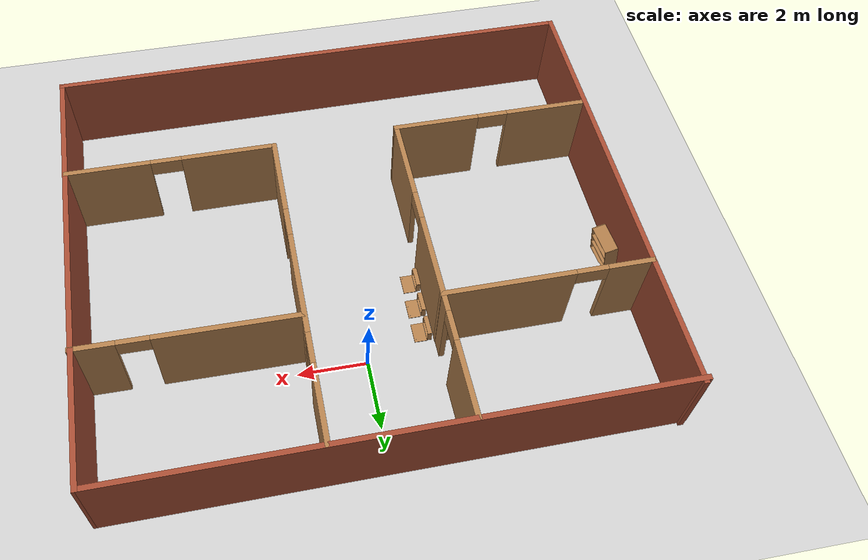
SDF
<sdf version="1.7">
 <world name="default">
  <light name="sun" type="directional">
   <pose>0 0 10 0 -0 0</pose>
   <diffuse>0.8 0.8 0.8 1</diffuse>
   <specular>0.2 0.2 0.2 1</specular>
   <attenuation>
    <range>1000</range>
    <constant>0.9</constant>
    <linear>0.01</linear>
    <quadratic>0.001</quadratic>
   </attenuation>
   <direction>-0.5 0.1 -0.9</direction>
   <spot><inner_angle>0</inner_angle><outer_angle>0</outer_angle><falloff>0</falloff></spot>
  </light>
  <model name="ground_plane">
   <static>1</static>
   <link name="link">
    <collision name="collision">
     <geometry><plane><normal>0 0 1</normal><size>100 100</size></plane></geometry>
     <surface>
      <contact><collide_bitmask>65535</collide_bitmask></contact>
      <friction><ode><mu>100</mu><mu2>50</mu2></ode></friction>
     </surface>
    </collision>
    <visual name="visual">
     <cast_shadows>0</cast_shadows>
     <geometry><plane><normal>0 0 1</normal><size>100 100</size></plane></geometry>
     <material>
      <script><uri>file://media/materials/scripts/gazebo.material</uri><name>Gazebo/Grey</name></script>
     </material>
    </visual>
   </link>
  </model>
  <gravity>0 0 -9.8</gravity>
  <magnetic_field>6e-06 2.3e-05 -4.2e-05</magnetic_field>
  <atmosphere type="adiabatic"/>
  <physics type="ode">
   <max_step_size>0.001</max_step_size>
   <real_time_factor>1</real_time_factor>
   <real_time_update_rate>1000</real_time_update_rate>
  </physics>
  <scene><ambient>0.4 0.4 0.4 1</ambient><background>0.7 0.7 0.7 1</background><shadows>1</shadows></scene>
  <audio><device>default</device></audio>
  <spherical_coordinates>
   <surface_model>EARTH_WGS84</surface_model>
   <latitude_deg>0</latitude_deg>
   <longitude_deg>0</longitude_deg>
   <elevation>0</elevation>
   <heading_deg>0</heading_deg>
  </spherical_coordinates>
  <model name="my_floor">
   <pose>-0.139801 -3.34112 0 0 -0 0</pose>
   <link name="Wall_0">
    <collision name="Wall_0_Collision">
     <geometry><box><size>13.3969 0.15 2.5</size></box></geometry>
     <pose>0 0 1.25 0 -0 0</pose>
    </collision>
    <visual name="Wall_0_Visual">
     <pose>0 0 1.25 0 -0 0</pose>
     <geometry><box><size>13.3969 0.15 2.5</size></box></geometry>
     <material>
      <script><uri>file://media/materials/scripts/gazebo.material</uri><name>Gazebo/Bricks</name></script>
      <ambient>1 1 1 1</ambient>
     </material>
     <meta><layer>0</layer></meta>
    </visual>
    <pose>-7.83388 -0.013549 0 0 -0 -1.5708</pose>
   </link>
   <link name="Wall_10">
    <pose>-4.87438 -3.05973 0 0 -0 0.002577</pose>
    <visual name="Wall_10_Visual_0">
     <pose>-1.74777 0 1.25 0 -0 0</pose>
     <geometry><box><size>2.55547 0.15 2.5</size></box></geometry>
     <material>
      <script><uri>file://media/materials/scripts/gazebo.material</uri><name>Gazebo/Wood</name></script>
      <ambient>1 1 1 1</ambient>
     </material>
     <meta><layer>0</layer></meta>
    </visual>
    <collision name="Wall_10_Collision_0">
     <geometry><box><size>2.55547 0.15 2.5</size></box></geometry>
     <pose>-1.74777 0 1.25 0 -0 0</pose>
    </collision>
    <visual name="Wall_10_Visual_1">
     <pose>1.72773 0 1.25 0 -0 0</pose>
     <geometry><box><size>2.59555 0.15 2.5</size></box></geometry>
     <material>
      <script><uri>file://media/materials/scripts/gazebo.material</uri><name>Gazebo/Wood</name></script>
      <ambient>1 1 1 1</ambient>
     </material>
     <meta><layer>0</layer></meta>
    </visual>
    <collision name="Wall_10_Collision_1">
     <geometry><box><size>2.59555 0.15 2.5</size></box></geometry>
     <pose>1.72773 0 1.25 0 -0 0</pose>
    </collision>
    <visual name="Wall_10_Visual_2">
     <pose>-0.020041 0 2.25 0 -0 0</pose>
     <geometry><box><size>0.9 0.15 0.5</size></box></geometry>
     <material>
      <script><uri>file://media/materials/scripts/gazebo.material</uri><name>Gazebo/Wood</name></script>
      <ambient>1 1 1 1</ambient>
     </material>
     <meta><layer>0</layer></meta>
    </visual>
    <collision name="Wall_10_Collision_2">
     <geometry><box><size>0.9 0.15 0.5</size></box></geometry>
     <pose>-0.020041 0 2.25 0 -0 0</pose>
    </collision>
   </link>
   <link name="Wall_12">
    <pose>-1.9459 1.7558 0 0 -0 1.57537</pose>
    <visual name="Wall_12_Visual_0">
     <pose>-3.58779 0 1.25 0 -0 0</pose>
     <geometry><box><size>2.59036 0.15 2.5</size></box></geometry>
     <material>
      <script><uri>file://media/materials/scripts/gazebo.material</uri><name>Gazebo/Wood</name></script>
      <ambient>1 1 1 1</ambient>
     </material>
     <meta><layer>0</layer></meta>
    </visual>
    <collision name="Wall_12_Collision_0">
     <geometry><box><size>2.59036 0.15 2.5</size></box></geometry>
     <pose>-3.58779 0 1.25 0 -0 0</pose>
    </collision>
    <visual name="Wall_12_Visual_1">
     <pose>0.157015 0 1.25 0 -0 0</pose>
     <geometry><box><size>3.09926 0.15 2.5</size></box></geometry>
     <material>
      <script><uri>file://media/materials/scripts/gazebo.material</uri><name>Gazebo/Wood</name></script>
      <ambient>1 1 1 1</ambient>
     </material>
     <meta><layer>0</layer></meta>
    </visual>
    <collision name="Wall_12_Collision_1">
     <geometry><box><size>3.09926 0.15 2.5</size></box></geometry>
     <pose>0.157015 0 1.25 0 -0 0</pose>
    </collision>
    <visual name="Wall_12_Visual_2">
     <pose>3.74481 0 1.25 0 -0 0</pose>
     <geometry><box><size>2.27633 0.15 2.5</size></box></geometry>
     <material>
      <script><uri>file://media/materials/scripts/gazebo.material</uri><name>Gazebo/Wood</name></script>
      <ambient>1 1 1 1</ambient>
     </material>
     <meta><layer>0</layer></meta>
    </visual>
    <collision name="Wall_12_Collision_2">
     <geometry><box><size>2.27633 0.15 2.5</size></box></geometry>
     <pose>3.74481 0 1.25 0 -0 0</pose>
    </collision>
    <visual name="Wall_12_Visual_3">
     <pose>-1.84261 0 2.25 0 -0 0</pose>
     <geometry><box><size>0.9 0.15 0.5</size></box></geometry>
     <material>
      <script><uri>file://media/materials/scripts/gazebo.material</uri><name>Gazebo/Wood</name></script>
      <ambient>1 1 1 1</ambient>
     </material>
     <meta><layer>0</layer></meta>
    </visual>
    <collision name="Wall_12_Collision_3">
     <geometry><box><size>0.9 0.15 0.5</size></box></geometry>
     <pose>-1.84261 0 2.25 0 -0 0</pose>
    </collision>
    <visual name="Wall_12_Visual_4">
     <pose>2.15664 0 2.25 0 -0 0</pose>
     <geometry><box><size>0.9 0.15 0.5</size></box></geometry>
     <material>
      <script><uri>file://media/materials/scripts/gazebo.material</uri><name>Gazebo/Wood</name></script>
      <ambient>1 1 1 1</ambient>
     </material>
     <meta><layer>0</layer></meta>
    </visual>
    <collision name="Wall_12_Collision_4">
     <geometry><box><size>0.9 0.15 0.5</size></box></geometry>
     <pose>2.15664 0 2.25 0 -0 0</pose>
    </collision>
   </link>
   <link name="Wall_14">
    <pose>-4.88063 2.9062 0 0 -0 0.004525</pose>
    <visual name="Wall_14_Visual_0">
     <pose>-2.34508 0 1.25 0 -0 0</pose>
     <geometry><box><size>1.33854 0.15 2.5</size></box></geometry>
     <material>
      <script><uri>file://media/materials/scripts/gazebo.material</uri><name>Gazebo/Wood</name></script>
      <ambient>1 1 1 1</ambient>
     </material>
     <meta><layer>0</layer></meta>
    </visual>
    <collision name="Wall_14_Collision_0">
     <geometry><box><size>1.33854 0.15 2.5</size></box></geometry>
     <pose>-2.34508 0 1.25 0 -0 0</pose>
    </collision>
    <visual name="Wall_14_Visual_1">
     <pose>1.11927 0 1.25 0 -0 0</pose>
     <geometry><box><size>3.79016 0.15 2.5</size></box></geometry>
     <material>
      <script><uri>file://media/materials/scripts/gazebo.material</uri><name>Gazebo/Wood</name></script>
      <ambient>1 1 1 1</ambient>
     </material>
     <meta><layer>0</layer></meta>
    </visual>
    <collision name="Wall_14_Collision_1">
     <geometry><box><size>3.79016 0.15 2.5</size></box></geometry>
     <pose>1.11927 0 1.25 0 -0 0</pose>
    </collision>
    <visual name="Wall_14_Visual_2">
     <pose>-1.22581 0 2.25 0 -0 0</pose>
     <geometry><box><size>0.9 0.15 0.5</size></box></geometry>
     <material>
      <script><uri>file://media/materials/scripts/gazebo.material</uri><name>Gazebo/Wood</name></script>
      <ambient>1 1 1 1</ambient>
     </material>
     <meta><layer>0</layer></meta>
    </visual>
    <collision name="Wall_14_Collision_2">
     <geometry><box><size>0.9 0.15 0.5</size></box></geometry>
     <pose>-1.22581 0 2.25 0 -0 0</pose>
    </collision>
   </link>
   <link name="Wall_16">
    <pose>1.78272 1.79033 0 0 -0 -1.5708</pose>
    <visual name="Wall_16_Visual_0">
     <pose>-3.71499 0 1.25 0 -0 0</pose>
     <geometry><box><size>2.32002 0.15 2.5</size></box></geometry>
     <material>
      <script><uri>file://media/materials/scripts/gazebo.material</uri><name>Gazebo/Wood</name></script>
      <ambient>1 1 1 1</ambient>
     </material>
     <meta><layer>0</layer></meta>
    </visual>
    <collision name="Wall_16_Collision_0">
     <geometry><box><size>2.32002 0.15 2.5</size></box></geometry>
     <pose>-3.71499 0 1.25 0 -0 0</pose>
    </collision>
    <visual name="Wall_16_Visual_1">
     <pose>-0.076134 0 1.25 0 -0 0</pose>
     <geometry><box><size>3.15769 0.15 2.5</size></box></geometry>
     <material>
      <script><uri>file://media/materials/scripts/gazebo.material</uri><name>Gazebo/Wood</name></script>
      <ambient>1 1 1 1</ambient>
     </material>
     <meta><layer>0</layer></meta>
    </visual>
    <collision name="Wall_16_Collision_1">
     <geometry><box><size>3.15769 0.15 2.5</size></box></geometry>
     <pose>-0.076134 0 1.25 0 -0 0</pose>
    </collision>
    <visual name="Wall_16_Visual_2">
     <pose>3.63886 0 1.25 0 -0 0</pose>
     <geometry><box><size>2.47229 0.15 2.5</size></box></geometry>
     <material>
      <script><uri>file://media/materials/scripts/gazebo.material</uri><name>Gazebo/Wood</name></script>
      <ambient>1 1 1 1</ambient>
     </material>
     <meta><layer>0</layer></meta>
    </visual>
    <collision name="Wall_16_Collision_2">
     <geometry><box><size>2.47229 0.15 2.5</size></box></geometry>
     <pose>3.63886 0 1.25 0 -0 0</pose>
    </collision>
    <visual name="Wall_16_Visual_3">
     <pose>-2.10498 0 2.25 0 -0 0</pose>
     <geometry><box><size>0.9 0.15 0.5</size></box></geometry>
     <material>
      <script><uri>file://media/materials/scripts/gazebo.material</uri><name>Gazebo/Wood</name></script>
      <ambient>1 1 1 1</ambient>
     </material>
     <meta><layer>0</layer></meta>
    </visual>
    <collision name="Wall_16_Collision_3">
     <geometry><box><size>0.9 0.15 0.5</size></box></geometry>
     <pose>-2.10498 0 2.25 0 -0 0</pose>
    </collision>
    <visual name="Wall_16_Visual_4">
     <pose>1.95271 0 2.25 0 -0 0</pose>
     <geometry><box><size>0.9 0.15 0.5</size></box></geometry>
     <material>
      <script><uri>file://media/materials/scripts/gazebo.material</uri><name>Gazebo/Wood</name></script>
      <ambient>1 1 1 1</ambient>
     </material>
     <meta><layer>0</layer></meta>
    </visual>
    <collision name="Wall_16_Collision_4">
     <geometry><box><size>0.9 0.15 0.5</size></box></geometry>
     <pose>1.95271 0 2.25 0 -0 0</pose>
    </collision>
   </link>
   <link name="Wall_17">
    <pose>4.83272 -3.00967 0 0 -0 0</pose>
    <visual name="Wall_17_Visual_0">
     <pose>-1.71276 0 1.25 0 -0 0</pose>
     <geometry><box><size>2.82448 0.15 2.5</size></box></geometry>
     <material>
      <script><uri>file://media/materials/scripts/gazebo.material</uri><name>Gazebo/Wood</name></script>
      <ambient>1 1 1 1</ambient>
     </material>
     <meta><layer>0</layer></meta>
    </visual>
    <collision name="Wall_17_Collision_0">
     <geometry><box><size>2.82448 0.15 2.5</size></box></geometry>
     <pose>-1.71276 0 1.25 0 -0 0</pose>
    </collision>
    <visual name="Wall_17_Visual_1">
     <pose>1.86224 0 1.25 0 -0 0</pose>
     <geometry><box><size>2.52552 0.15 2.5</size></box></geometry>
     <material>
      <script><uri>file://media/materials/scripts/gazebo.material</uri><name>Gazebo/Wood</name></script>
      <ambient>1 1 1 1</ambient>
     </material>
     <meta><layer>0</layer></meta>
    </visual>
    <collision name="Wall_17_Collision_1">
     <geometry><box><size>2.52552 0.15 2.5</size></box></geometry>
     <pose>1.86224 0 1.25 0 -0 0</pose>
    </collision>
    <visual name="Wall_17_Visual_2">
     <pose>0.149482 0 2.25 0 -0 0</pose>
     <geometry><box><size>0.9 0.15 0.5</size></box></geometry>
     <material>
      <script><uri>file://media/materials/scripts/gazebo.material</uri><name>Gazebo/Wood</name></script>
      <ambient>1 1 1 1</ambient>
     </material>
     <meta><layer>0</layer></meta>
    </visual>
    <collision name="Wall_17_Collision_2">
     <geometry><box><size>0.9 0.15 0.5</size></box></geometry>
     <pose>0.149482 0 2.25 0 -0 0</pose>
    </collision>
   </link>
   <link name="Wall_21">
    <pose>4.82844 2.8796 0 0 -0 -0.004367</pose>
    <visual name="Wall_21_Visual_0">
     <pose>-1.07 0 1.25 0 -0 0</pose>
     <geometry><box><size>4.1015 0.15 2.5</size></box></geometry>
     <material>
      <script><uri>file://media/materials/scripts/gazebo.material</uri><name>Gazebo/Wood</name></script>
      <ambient>1 1 1 1</ambient>
     </material>
     <meta><layer>0</layer></meta>
    </visual>
    <collision name="Wall_21_Collision_0">
     <geometry><box><size>4.1015 0.15 2.5</size></box></geometry>
     <pose>-1.07 0 1.25 0 -0 0</pose>
    </collision>
    <visual name="Wall_21_Visual_1">
     <pose>2.50075 0 1.25 0 -0 0</pose>
     <geometry><box><size>1.24001 0.15 2.5</size></box></geometry>
     <material>
      <script><uri>file://media/materials/scripts/gazebo.material</uri><name>Gazebo/Wood</name></script>
      <ambient>1 1 1 1</ambient>
     </material>
     <meta><layer>0</layer></meta>
    </visual>
    <collision name="Wall_21_Collision_1">
     <geometry><box><size>1.24001 0.15 2.5</size></box></geometry>
     <pose>2.50075 0 1.25 0 -0 0</pose>
    </collision>
    <visual name="Wall_21_Visual_2">
     <pose>1.43074 0 2.25 0 -0 0</pose>
     <geometry><box><size>0.9 0.15 0.5</size></box></geometry>
     <material>
      <script><uri>file://media/materials/scripts/gazebo.material</uri><name>Gazebo/Wood</name></script>
      <ambient>1 1 1 1</ambient>
     </material>
     <meta><layer>0</layer></meta>
    </visual>
    <collision name="Wall_21_Collision_2">
     <geometry><box><size>0.9 0.15 0.5</size></box></geometry>
     <pose>1.43074 0 2.25 0 -0 0</pose>
    </collision>
   </link>
   <link name="Wall_3">
    <collision name="Wall_3_Collision">
     <geometry><box><size>15.924 0.15 2.5</size></box></geometry>
     <pose>0 0 1.25 0 -0 0</pose>
    </collision>
    <visual name="Wall_3_Visual">
     <pose>0 0 1.25 0 -0 0</pose>
     <geometry><box><size>15.924 0.15 2.5</size></box></geometry>
     <material>
      <script><uri>file://media/materials/scripts/gazebo.material</uri><name>Gazebo/Bricks</name></script>
      <ambient>1 1 1 1</ambient>
     </material>
     <meta><layer>0</layer></meta>
    </visual>
    <pose>0.05308 -6.6104 0 0 -0 0.003373</pose>
   </link>
   <link name="Wall_4">
    <collision name="Wall_4_Collision">
     <geometry><box><size>13.371 0.15 2.5</size></box></geometry>
     <pose>0 0 1.25 0 -0 0</pose>
    </collision>
    <visual name="Wall_4_Visual">
     <pose>0 0 1.25 0 -0 0</pose>
     <geometry><box><size>13.371 0.15 2.5</size></box></geometry>
     <material>
      <script><uri>file://media/materials/scripts/gazebo.material</uri><name>Gazebo/Bricks</name></script>
      <ambient>1 1 1 1</ambient>
     </material>
     <meta><layer>0</layer></meta>
    </visual>
    <pose>7.87354 0.026351 0 0 -0 1.58086</pose>
   </link>
   <link name="Wall_5">
    <collision name="Wall_5_Collision">
     <geometry><box><size>15.8977 0.15 2.5</size></box></geometry>
     <pose>0 0 1.25 0 -0 0</pose>
    </collision>
    <visual name="Wall_5_Visual">
     <pose>0 0 1.25 0 -0 0</pose>
     <geometry><box><size>15.8977 0.15 2.5</size></box></geometry>
     <material>
      <script><uri>file://media/materials/scripts/gazebo.material</uri><name>Gazebo/Bricks</name></script>
      <ambient>1 1 1 1</ambient>
     </material>
     <meta><layer>0</layer></meta>
    </visual>
    <pose>-0.066621 6.5833 0 0 -0 -3.13484</pose>
   </link>
   <static>1</static>
  </model>
  <model name="bookshelf">
   <static>1</static>
   <link name="link">
    <inertial><mass>1</mass></inertial>
    <collision name="back">
     <pose>0 0.005 0.6 0 -0 0</pose>
     <geometry><box><size>0.9 0.01 1.2</size></box></geometry>
    </collision>
    <visual name="visual1">
     <pose>0 0.005 0.6 0 -0 0</pose>
     <geometry><box><size>0.9 0.01 1.2</size></box></geometry>
     <material>
      <script><uri>file://media/materials/scripts/gazebo.material</uri><name>Gazebo/Wood</name></script>
     </material>
    </visual>
    <collision name="left_side">
     <pose>0.45 -0.195 0.6 0 -0 0</pose>
     <geometry><box><size>0.02 0.4 1.2</size></box></geometry>
    </collision>
    <visual name="visual2">
     <pose>0.45 -0.195 0.6 0 -0 0</pose>
     <geometry><box><size>0.02 0.4 1.2</size></box></geometry>
     <material>
      <script><uri>file://media/materials/scripts/gazebo.material</uri><name>Gazebo/Wood</name></script>
     </material>
    </visual>
    <collision name="right_side">
     <pose>-0.45 -0.195 0.6 0 -0 0</pose>
     <geometry><box><size>0.02 0.4 1.2</size></box></geometry>
    </collision>
    <visual name="visual3">
     <pose>-0.45 -0.195 0.6 0 -0 0</pose>
     <geometry><box><size>0.02 0.4 1.2</size></box></geometry>
     <material>
      <script><uri>file://media/materials/scripts/gazebo.material</uri><name>Gazebo/Wood</name></script>
     </material>
    </visual>
    <collision name="bottom">
     <pose>0 -0.195 0.03 0 -0 0</pose>
     <geometry><box><size>0.88 0.4 0.06</size></box></geometry>
    </collision>
    <visual name="visual4">
     <pose>0 -0.195 0.03 0 -0 0</pose>
     <geometry><box><size>0.88 0.4 0.06</size></box></geometry>
     <material>
      <script><uri>file://media/materials/scripts/gazebo.material</uri><name>Gazebo/Wood</name></script>
     </material>
    </visual>
    <collision name="top">
     <pose>0 -0.195 1.19 0 -0 0</pose>
     <geometry><box><size>0.88 0.4 0.02</size></box></geometry>
    </collision>
    <visual name="visual5">
     <pose>0 -0.195 1.19 0 -0 0</pose>
     <geometry><box><size>0.88 0.4 0.02</size></box></geometry>
     <material>
      <script><uri>file://media/materials/scripts/gazebo.material</uri><name>Gazebo/Wood</name></script>
     </material>
    </visual>
    <collision name="low_shelf">
     <pose>0 -0.195 0.43 0 -0 0</pose>
     <geometry><box><size>0.88 0.4 0.02</size></box></geometry>
    </collision>
    <visual name="visual6">
     <pose>0 -0.195 0.43 0 -0 0</pose>
     <geometry><box><size>0.88 0.4 0.02</size></box></geometry>
     <material>
      <script><uri>file://media/materials/scripts/gazebo.material</uri><name>Gazebo/Wood</name></script>
     </material>
    </visual>
    <collision name="high_shelf">
     <pose>0 -0.195 0.8 0 -0 0</pose>
     <geometry><box><size>0.88 0.4 0.02</size></box></geometry>
    </collision>
    <visual name="visual7">
     <pose>0 -0.195 0.8 0 -0 0</pose>
     <geometry><box><size>0.88 0.4 0.02</size></box></geometry>
     <material>
      <script><uri>file://media/materials/scripts/gazebo.material</uri><name>Gazebo/Wood</name></script>
     </material>
    </visual>
   </link>
   <pose>-4.65689 -0.609841 0 0 -0 0</pose>
  </model>
  <model name="bookshelf_0">
   <static>1</static>
   <link name="link">
    <inertial><mass>1</mass></inertial>
    <collision name="back">
     <pose>0 0.005 0.6 0 -0 0</pose>
     <geometry><box><size>0.9 0.01 1.2</size></box></geometry>
    </collision>
    <visual name="visual1">
     <pose>0 0.005 0.6 0 -0 0</pose>
     <geometry><box><size>0.9 0.01 1.2</size></box></geometry>
     <material>
      <script><uri>file://media/materials/scripts/gazebo.material</uri><name>Gazebo/Wood</name></script>
     </material>
    </visual>
    <collision name="left_side">
     <pose>0.45 -0.195 0.6 0 -0 0</pose>
     <geometry><box><size>0.02 0.4 1.2</size></box></geometry>
    </collision>
    <visual name="visual2">
     <pose>0.45 -0.195 0.6 0 -0 0</pose>
     <geometry><box><size>0.02 0.4 1.2</size></box></geometry>
     <material>
      <script><uri>file://media/materials/scripts/gazebo.material</uri><name>Gazebo/Wood</name></script>
     </material>
    </visual>
    <collision name="right_side">
     <pose>-0.45 -0.195 0.6 0 -0 0</pose>
     <geometry><box><size>0.02 0.4 1.2</size></box></geometry>
    </collision>
    <visual name="visual3">
     <pose>-0.45 -0.195 0.6 0 -0 0</pose>
     <geometry><box><size>0.02 0.4 1.2</size></box></geometry>
     <material>
      <script><uri>file://media/materials/scripts/gazebo.material</uri><name>Gazebo/Wood</name></script>
     </material>
    </visual>
    <collision name="bottom">
     <pose>0 -0.195 0.03 0 -0 0</pose>
     <geometry><box><size>0.88 0.4 0.06</size></box></geometry>
    </collision>
    <visual name="visual4">
     <pose>0 -0.195 0.03 0 -0 0</pose>
     <geometry><box><size>0.88 0.4 0.06</size></box></geometry>
     <material>
      <script><uri>file://media/materials/scripts/gazebo.material</uri><name>Gazebo/Wood</name></script>
     </material>
    </visual>
    <collision name="top">
     <pose>0 -0.195 1.19 0 -0 0</pose>
     <geometry><box><size>0.88 0.4 0.02</size></box></geometry>
    </collision>
    <visual name="visual5">
     <pose>0 -0.195 1.19 0 -0 0</pose>
     <geometry><box><size>0.88 0.4 0.02</size></box></geometry>
     <material>
      <script><uri>file://media/materials/scripts/gazebo.material</uri><name>Gazebo/Wood</name></script>
     </material>
    </visual>
    <collision name="low_shelf">
     <pose>0 -0.195 0.43 0 -0 0</pose>
     <geometry><box><size>0.88 0.4 0.02</size></box></geometry>
    </collision>
    <visual name="visual6">
     <pose>0 -0.195 0.43 0 -0 0</pose>
     <geometry><box><size>0.88 0.4 0.02</size></box></geometry>
     <material>
      <script><uri>file://media/materials/scripts/gazebo.material</uri><name>Gazebo/Wood</name></script>
     </material>
    </visual>
    <collision name="high_shelf">
     <pose>0 -0.195 0.8 0 -0 0</pose>
     <geometry><box><size>0.88 0.4 0.02</size></box></geometry>
    </collision>
    <visual name="visual7">
     <pose>0 -0.195 0.8 0 -0 0</pose>
     <geometry><box><size>0.88 0.4 0.02</size></box></geometry>
     <material>
      <script><uri>file://media/materials/scripts/gazebo.material</uri><name>Gazebo/Wood</name></script>
     </material>
    </visual>
   </link>
   <pose>-7.90544 -2.32805 0 0.187646 0.049674 1.68523</pose>
  </model>
  <model name="bookshelf_1">
   <static>1</static>
   <link name="link">
    <inertial><mass>1</mass></inertial>
    <collision name="back">
     <pose>0 0.005 0.6 0 -0 0</pose>
     <geometry><box><size>0.9 0.01 1.2</size></box></geometry>
    </collision>
    <visual name="visual1">
     <pose>0 0.005 0.6 0 -0 0</pose>
     <geometry><box><size>0.9 0.01 1.2</size></box></geometry>
     <material>
      <script><uri>file://media/materials/scripts/gazebo.material</uri><name>Gazebo/Wood</name></script>
     </material>
    </visual>
    <collision name="left_side">
     <pose>0.45 -0.195 0.6 0 -0 0</pose>
     <geometry><box><size>0.02 0.4 1.2</size></box></geometry>
    </collision>
    <visual name="visual2">
     <pose>0.45 -0.195 0.6 0 -0 0</pose>
     <geometry><box><size>0.02 0.4 1.2</size></box></geometry>
     <material>
      <script><uri>file://media/materials/scripts/gazebo.material</uri><name>Gazebo/Wood</name></script>
     </material>
    </visual>
    <collision name="right_side">
     <pose>-0.45 -0.195 0.6 0 -0 0</pose>
     <geometry><box><size>0.02 0.4 1.2</size></box></geometry>
    </collision>
    <visual name="visual3">
     <pose>-0.45 -0.195 0.6 0 -0 0</pose>
     <geometry><box><size>0.02 0.4 1.2</size></box></geometry>
     <material>
      <script><uri>file://media/materials/scripts/gazebo.material</uri><name>Gazebo/Wood</name></script>
     </material>
    </visual>
    <collision name="bottom">
     <pose>0 -0.195 0.03 0 -0 0</pose>
     <geometry><box><size>0.88 0.4 0.06</size></box></geometry>
    </collision>
    <visual name="visual4">
     <pose>0 -0.195 0.03 0 -0 0</pose>
     <geometry><box><size>0.88 0.4 0.06</size></box></geometry>
     <material>
      <script><uri>file://media/materials/scripts/gazebo.material</uri><name>Gazebo/Wood</name></script>
     </material>
    </visual>
    <collision name="top">
     <pose>0 -0.195 1.19 0 -0 0</pose>
     <geometry><box><size>0.88 0.4 0.02</size></box></geometry>
    </collision>
    <visual name="visual5">
     <pose>0 -0.195 1.19 0 -0 0</pose>
     <geometry><box><size>0.88 0.4 0.02</size></box></geometry>
     <material>
      <script><uri>file://media/materials/scripts/gazebo.material</uri><name>Gazebo/Wood</name></script>
     </material>
    </visual>
    <collision name="low_shelf">
     <pose>0 -0.195 0.43 0 -0 0</pose>
     <geometry><box><size>0.88 0.4 0.02</size></box></geometry>
    </collision>
    <visual name="visual6">
     <pose>0 -0.195 0.43 0 -0 0</pose>
     <geometry><box><size>0.88 0.4 0.02</size></box></geometry>
     <material>
      <script><uri>file://media/materials/scripts/gazebo.material</uri><name>Gazebo/Wood</name></script>
     </material>
    </visual>
    <collision name="high_shelf">
     <pose>0 -0.195 0.8 0 -0 0</pose>
     <geometry><box><size>0.88 0.4 0.02</size></box></geometry>
    </collision>
    <visual name="visual7">
     <pose>0 -0.195 0.8 0 -0 0</pose>
     <geometry><box><size>0.88 0.4 0.02</size></box></geometry>
     <material>
      <script><uri>file://media/materials/scripts/gazebo.material</uri><name>Gazebo/Wood</name></script>
     </material>
    </visual>
   </link>
   <pose>4.83266 -0.700052 -0.065453 0 -0 0</pose>
  </model>
  <model name="wooden_case">
   <link name="base">
    <pose>0 0 0.024 0 -0 0</pose>
    <inertial>
     <pose>-0.022184 0 0.171592 0 -0 0</pose>
     <mass>3.96264</mass>
     <inertia>
      <ixx>0.213536</ixx>
      <ixy>0</ixy>
      <ixz>0.000779377</ixz>
      <iyy>0.0708943</iyy>
      <iyz>0</iyz>
      <izz>0.154604</izz>
     </inertia>
    </inertial>
    <collision name="collision_back">
     <pose>-0.053975 0 0.1778 0 -0 0</pose>
     <geometry><box><size>0.01905 0.5461 0.3175</size></box></geometry>
     <surface>
      <contact>
       <poissons_ratio>0.347</poissons_ratio>
       <elastic_modulus>8.8e+09</elastic_modulus>
       <ode><kp>100000</kp><kd>100</kd><max_vel>100</max_vel><min_depth>0.001</min_depth></ode>
      </contact>
      <friction>
       <torsional>
        <coefficient>1</coefficient>
        <use_patch_radius>0</use_patch_radius>
        <surface_radius>0.01</surface_radius>
       </torsional>
      </friction>
     </surface>
    </collision>
    <visual name="visual_back">
     <pose>-0.053975 0 0.1778 0 -0 0</pose>
     <geometry><box><size>0.01905 0.5461 0.3175</size></box></geometry>
     <material>
      <script><uri>file://media/materials/scripts/gazebo.material</uri><name>Gazebo/Wood</name></script>
     </material>
    </visual>
    <collision name="collision_bottom">
     <pose>0 0 0.009525 0 -0 0</pose>
     <geometry><box><size>0.127 0.5842 0.01905</size></box></geometry>
     <surface>
      <contact>
       <poissons_ratio>0.347</poissons_ratio>
       <elastic_modulus>8.8e+09</elastic_modulus>
       <ode><kp>100000</kp><kd>100</kd><max_vel>100</max_vel><min_depth>0.001</min_depth></ode>
      </contact>
      <friction>
       <torsional>
        <coefficient>1</coefficient>
        <use_patch_radius>0</use_patch_radius>
        <surface_radius>0.01</surface_radius>
       </torsional>
      </friction>
     </surface>
    </collision>
    <visual name="visual_bottom">
     <pose>0 0 0.009525 0 -0 0</pose>
     <geometry><box><size>0.127 0.5842 0.01905</size></box></geometry>
     <material>
      <script><uri>file://media/materials/scripts/gazebo.material</uri><name>Gazebo/Wood</name></script>
     </material>
    </visual>
    <collision name="collision_top">
     <pose>0 0 0.346075 0 -0 0</pose>
     <geometry><box><size>0.127 0.5842 0.01905</size></box></geometry>
     <surface>
      <contact>
       <poissons_ratio>0.347</poissons_ratio>
       <elastic_modulus>8.8e+09</elastic_modulus>
       <ode><kp>100000</kp><kd>100</kd><max_vel>100</max_vel><min_depth>0.001</min_depth></ode>
      </contact>
      <friction>
       <torsional>
        <coefficient>1</coefficient>
        <use_patch_radius>0</use_patch_radius>
        <surface_radius>0.01</surface_radius>
       </torsional>
      </friction>
     </surface>
    </collision>
    <visual name="visual_top">
     <pose>0 0 0.346075 0 -0 0</pose>
     <geometry><box><size>0.127 0.5842 0.01905</size></box></geometry>
     <material>
      <script><uri>file://media/materials/scripts/gazebo.material</uri><name>Gazebo/Wood</name></script>
     </material>
    </visual>
    <collision name="collision_left">
     <pose>0 -0.282575 0.1778 0 -0 0</pose>
     <geometry><box><size>0.127 0.01905 0.3175</size></box></geometry>
     <surface>
      <contact>
       <poissons_ratio>0.347</poissons_ratio>
       <elastic_modulus>8.8e+09</elastic_modulus>
       <ode><kp>100000</kp><kd>100</kd><max_vel>100</max_vel><min_depth>0.001</min_depth></ode>
      </contact>
      <friction>
       <torsional>
        <coefficient>1</coefficient>
        <use_patch_radius>0</use_patch_radius>
        <surface_radius>0.01</surface_radius>
       </torsional>
      </friction>
     </surface>
    </collision>
    <visual name="visual_left">
     <pose>0 -0.282575 0.1778 0 -0 0</pose>
     <geometry><box><size>0.127 0.01905 0.3175</size></box></geometry>
     <material>
      <script><uri>file://media/materials/scripts/gazebo.material</uri><name>Gazebo/Wood</name></script>
     </material>
    </visual>
    <collision name="collision_right">
     <pose>0 0.282575 0.1778 0 -0 0</pose>
     <geometry><box><size>0.127 0.01905 0.3175</size></box></geometry>
     <surface>
      <contact>
       <poissons_ratio>0.347</poissons_ratio>
       <elastic_modulus>8.8e+09</elastic_modulus>
       <ode><kp>100000</kp><kd>100</kd><max_vel>100</max_vel><min_depth>0.001</min_depth></ode>
      </contact>
      <friction>
       <torsional>
        <coefficient>1</coefficient>
        <use_patch_radius>0</use_patch_radius>
        <surface_radius>0.01</surface_radius>
       </torsional>
      </friction>
     </surface>
    </collision>
    <visual name="visual_right">
     <pose>0 0.282575 0.1778 0 -0 0</pose>
     <geometry><box><size>0.127 0.01905 0.3175</size></box></geometry>
     <material>
      <script><uri>file://media/materials/scripts/gazebo.material</uri><name>Gazebo/Wood</name></script>
     </material>
    </visual>
    <collision name="collision_block_left">
     <pose>0.0095 -0.2151 -0.012 0 -0 0</pose>
     <geometry><box><size>0.108 0.05 0.024</size></box></geometry>
     <surface>
      <contact>
       <poissons_ratio>0.347</poissons_ratio>
       <elastic_modulus>8.8e+09</elastic_modulus>
       <ode><kp>100000</kp><kd>100</kd><max_vel>100</max_vel><min_depth>0.001</min_depth></ode>
      </contact>
      <friction>
       <torsional>
        <coefficient>1</coefficient>
        <use_patch_radius>0</use_patch_radius>
        <surface_radius>0.01</surface_radius>
       </torsional>
      </friction>
     </surface>
    </collision>
    <visual name="visual_block_left">
     <pose>0.0095 -0.2151 -0.012 0 -0 0</pose>
     <geometry><box><size>0.108 0.05 0.024</size></box></geometry>
     <material>
      <script><uri>file://media/materials/scripts/gazebo.material</uri><name>Gazebo/Wood</name></script>
     </material>
    </visual>
    <collision name="collision_block_right">
     <pose>0.0095 0.2151 -0.012 0 -0 0</pose>
     <geometry><box><size>0.108 0.05 0.024</size></box></geometry>
     <surface>
      <contact>
       <poissons_ratio>0.347</poissons_ratio>
       <elastic_modulus>8.8e+09</elastic_modulus>
       <ode><kp>100000</kp><kd>100</kd><max_vel>100</max_vel><min_depth>0.001</min_depth></ode>
      </contact>
      <friction>
       <torsional>
        <coefficient>1</coefficient>
        <use_patch_radius>0</use_patch_radius>
        <surface_radius>0.01</surface_radius>
       </torsional>
      </friction>
     </surface>
    </collision>
    <visual name="visual_block_right">
     <pose>0.0095 0.2151 -0.012 0 -0 0</pose>
     <geometry><box><size>0.108 0.05 0.024</size></box></geometry>
     <material>
      <script><uri>file://media/materials/scripts/gazebo.material</uri><name>Gazebo/Wood</name></script>
     </material>
    </visual>
   </link>
   <link name="lid">
    <pose>0.243775 0 0.009525 0 -0 0</pose>
    <inertial>
     <mass>1.97874</mass>
     <inertia>
      <ixx>0.0563367</ixx>
      <ixy>0</ixy>
      <ixz>0</ixz>
      <iyy>0.020911</iyy>
      <iyz>0</iyz>
      <izz>0.0771281</izz>
     </inertia>
    </inertial>
    <collision name="collision">
     <geometry><box><size>0.3556 0.5842 0.01905</size></box></geometry>
     <surface>
      <contact>
       <poissons_ratio>0.347</poissons_ratio>
       <elastic_modulus>8.8e+09</elastic_modulus>
       <ode><kp>100000</kp><kd>100</kd><max_vel>100</max_vel><min_depth>0.001</min_depth></ode>
      </contact>
      <friction>
       <torsional>
        <coefficient>1</coefficient>
        <use_patch_radius>0</use_patch_radius>
        <surface_radius>0.01</surface_radius>
       </torsional>
      </friction>
     </surface>
    </collision>
    <visual name="visual">
     <geometry><box><size>0.3556 0.5842 0.01905</size></box></geometry>
     <material>
      <script><uri>file://media/materials/scripts/gazebo.material</uri><name>Gazebo/Wood</name></script>
     </material>
    </visual>
    <visual name="tee_nut_1">
     <pose>0.122 -0.216 0 0 -0 0</pose>
     <geometry><cylinder><radius>0.00635</radius><length>0.0192405</length></cylinder></geometry>
     <material>
      <script><uri>file://media/materials/scripts/gazebo.material</uri><name>Gazebo/Grey</name></script>
     </material>
    </visual>
    <visual name="tee_nut_2">
     <pose>0.122 -0.088 0 0 -0 0</pose>
     <geometry><cylinder><radius>0.00635</radius><length>0.0192405</length></cylinder></geometry>
     <material>
      <script><uri>file://media/materials/scripts/gazebo.material</uri><name>Gazebo/Grey</name></script>
     </material>
    </visual>
    <visual name="tee_nut_3">
     <pose>0.122 0.088 0 0 -0 0</pose>
     <geometry><cylinder><radius>0.00635</radius><length>0.0192405</length></cylinder></geometry>
     <material>
      <script><uri>file://media/materials/scripts/gazebo.material</uri><name>Gazebo/Grey</name></script>
     </material>
    </visual>
    <visual name="tee_nut_4">
     <pose>0.122 0.216 0 0 -0 0</pose>
     <geometry><cylinder><radius>0.00635</radius><length>0.0192405</length></cylinder></geometry>
     <material>
      <script><uri>file://media/materials/scripts/gazebo.material</uri><name>Gazebo/Grey</name></script>
     </material>
    </visual>
   </link>
   <joint name="lid_hinge" type="revolute">
    <pose>-0.1778 0 0.01905 0 -0 0</pose>
    <parent>base</parent>
    <child>lid</child>
    <axis>
     <xyz>0 1 0</xyz>
     <limit><upper>0.523599</upper><lower>-1.5708</lower></limit>
     <dynamics><spring_reference>0</spring_reference><spring_stiffness>0</spring_stiffness></dynamics>
    </axis>
   </joint>
   <pose>-1.87108 -0.728567 -0.001057 0 -0.000429 0</pose>
  </model>
  <model name="wooden_case_0">
   <link name="base">
    <pose>0 0 0.024 0 -0 0</pose>
    <inertial>
     <pose>-0.022184 0 0.171592 0 -0 0</pose>
     <mass>3.96264</mass>
     <inertia>
      <ixx>0.213536</ixx>
      <ixy>0</ixy>
      <ixz>0.000779377</ixz>
      <iyy>0.0708943</iyy>
      <iyz>0</iyz>
      <izz>0.154604</izz>
     </inertia>
    </inertial>
    <collision name="collision_back">
     <pose>-0.053975 0 0.1778 0 -0 0</pose>
     <geometry><box><size>0.01905 0.5461 0.3175</size></box></geometry>
     <surface>
      <contact>
       <poissons_ratio>0.347</poissons_ratio>
       <elastic_modulus>8.8e+09</elastic_modulus>
       <ode><kp>100000</kp><kd>100</kd><max_vel>100</max_vel><min_depth>0.001</min_depth></ode>
      </contact>
      <friction>
       <torsional>
        <coefficient>1</coefficient>
        <use_patch_radius>0</use_patch_radius>
        <surface_radius>0.01</surface_radius>
       </torsional>
      </friction>
     </surface>
    </collision>
    <visual name="visual_back">
     <pose>-0.053975 0 0.1778 0 -0 0</pose>
     <geometry><box><size>0.01905 0.5461 0.3175</size></box></geometry>
     <material>
      <script><uri>file://media/materials/scripts/gazebo.material</uri><name>Gazebo/Wood</name></script>
     </material>
    </visual>
    <collision name="collision_bottom">
     <pose>0 0 0.009525 0 -0 0</pose>
     <geometry><box><size>0.127 0.5842 0.01905</size></box></geometry>
     <surface>
      <contact>
       <poissons_ratio>0.347</poissons_ratio>
       <elastic_modulus>8.8e+09</elastic_modulus>
       <ode><kp>100000</kp><kd>100</kd><max_vel>100</max_vel><min_depth>0.001</min_depth></ode>
      </contact>
      <friction>
       <torsional>
        <coefficient>1</coefficient>
        <use_patch_radius>0</use_patch_radius>
        <surface_radius>0.01</surface_radius>
       </torsional>
      </friction>
     </surface>
    </collision>
    <visual name="visual_bottom">
     <pose>0 0 0.009525 0 -0 0</pose>
     <geometry><box><size>0.127 0.5842 0.01905</size></box></geometry>
     <material>
      <script><uri>file://media/materials/scripts/gazebo.material</uri><name>Gazebo/Wood</name></script>
     </material>
    </visual>
    <collision name="collision_top">
     <pose>0 0 0.346075 0 -0 0</pose>
     <geometry><box><size>0.127 0.5842 0.01905</size></box></geometry>
     <surface>
      <contact>
       <poissons_ratio>0.347</poissons_ratio>
       <elastic_modulus>8.8e+09</elastic_modulus>
       <ode><kp>100000</kp><kd>100</kd><max_vel>100</max_vel><min_depth>0.001</min_depth></ode>
      </contact>
      <friction>
       <torsional>
        <coefficient>1</coefficient>
        <use_patch_radius>0</use_patch_radius>
        <surface_radius>0.01</surface_radius>
       </torsional>
      </friction>
     </surface>
    </collision>
    <visual name="visual_top">
     <pose>0 0 0.346075 0 -0 0</pose>
     <geometry><box><size>0.127 0.5842 0.01905</size></box></geometry>
     <material>
      <script><uri>file://media/materials/scripts/gazebo.material</uri><name>Gazebo/Wood</name></script>
     </material>
    </visual>
    <collision name="collision_left">
     <pose>0 -0.282575 0.1778 0 -0 0</pose>
     <geometry><box><size>0.127 0.01905 0.3175</size></box></geometry>
     <surface>
      <contact>
       <poissons_ratio>0.347</poissons_ratio>
       <elastic_modulus>8.8e+09</elastic_modulus>
       <ode><kp>100000</kp><kd>100</kd><max_vel>100</max_vel><min_depth>0.001</min_depth></ode>
      </contact>
      <friction>
       <torsional>
        <coefficient>1</coefficient>
        <use_patch_radius>0</use_patch_radius>
        <surface_radius>0.01</surface_radius>
       </torsional>
      </friction>
     </surface>
    </collision>
    <visual name="visual_left">
     <pose>0 -0.282575 0.1778 0 -0 0</pose>
     <geometry><box><size>0.127 0.01905 0.3175</size></box></geometry>
     <material>
      <script><uri>file://media/materials/scripts/gazebo.material</uri><name>Gazebo/Wood</name></script>
     </material>
    </visual>
    <collision name="collision_right">
     <pose>0 0.282575 0.1778 0 -0 0</pose>
     <geometry><box><size>0.127 0.01905 0.3175</size></box></geometry>
     <surface>
      <contact>
       <poissons_ratio>0.347</poissons_ratio>
       <elastic_modulus>8.8e+09</elastic_modulus>
       <ode><kp>100000</kp><kd>100</kd><max_vel>100</max_vel><min_depth>0.001</min_depth></ode>
      </contact>
      <friction>
       <torsional>
        <coefficient>1</coefficient>
        <use_patch_radius>0</use_patch_radius>
        <surface_radius>0.01</surface_radius>
       </torsional>
      </friction>
     </surface>
    </collision>
    <visual name="visual_right">
     <pose>0 0.282575 0.1778 0 -0 0</pose>
     <geometry><box><size>0.127 0.01905 0.3175</size></box></geometry>
     <material>
      <script><uri>file://media/materials/scripts/gazebo.material</uri><name>Gazebo/Wood</name></script>
     </material>
    </visual>
    <collision name="collision_block_left">
     <pose>0.0095 -0.2151 -0.012 0 -0 0</pose>
     <geometry><box><size>0.108 0.05 0.024</size></box></geometry>
     <surface>
      <contact>
       <poissons_ratio>0.347</poissons_ratio>
       <elastic_modulus>8.8e+09</elastic_modulus>
       <ode><kp>100000</kp><kd>100</kd><max_vel>100</max_vel><min_depth>0.001</min_depth></ode>
      </contact>
      <friction>
       <torsional>
        <coefficient>1</coefficient>
        <use_patch_radius>0</use_patch_radius>
        <surface_radius>0.01</surface_radius>
       </torsional>
      </friction>
     </surface>
    </collision>
    <visual name="visual_block_left">
     <pose>0.0095 -0.2151 -0.012 0 -0 0</pose>
     <geometry><box><size>0.108 0.05 0.024</size></box></geometry>
     <material>
      <script><uri>file://media/materials/scripts/gazebo.material</uri><name>Gazebo/Wood</name></script>
     </material>
    </visual>
    <collision name="collision_block_right">
     <pose>0.0095 0.2151 -0.012 0 -0 0</pose>
     <geometry><box><size>0.108 0.05 0.024</size></box></geometry>
     <surface>
      <contact>
       <poissons_ratio>0.347</poissons_ratio>
       <elastic_modulus>8.8e+09</elastic_modulus>
       <ode><kp>100000</kp><kd>100</kd><max_vel>100</max_vel><min_depth>0.001</min_depth></ode>
      </contact>
      <friction>
       <torsional>
        <coefficient>1</coefficient>
        <use_patch_radius>0</use_patch_radius>
        <surface_radius>0.01</surface_radius>
       </torsional>
      </friction>
     </surface>
    </collision>
    <visual name="visual_block_right">
     <pose>0.0095 0.2151 -0.012 0 -0 0</pose>
     <geometry><box><size>0.108 0.05 0.024</size></box></geometry>
     <material>
      <script><uri>file://media/materials/scripts/gazebo.material</uri><name>Gazebo/Wood</name></script>
     </material>
    </visual>
   </link>
   <link name="lid">
    <pose>0.243775 0 0.009525 0 -0 0</pose>
    <inertial>
     <mass>1.97874</mass>
     <inertia>
      <ixx>0.0563367</ixx>
      <ixy>0</ixy>
      <ixz>0</ixz>
      <iyy>0.020911</iyy>
      <iyz>0</iyz>
      <izz>0.0771281</izz>
     </inertia>
    </inertial>
    <collision name="collision">
     <geometry><box><size>0.3556 0.5842 0.01905</size></box></geometry>
     <surface>
      <contact>
       <poissons_ratio>0.347</poissons_ratio>
       <elastic_modulus>8.8e+09</elastic_modulus>
       <ode><kp>100000</kp><kd>100</kd><max_vel>100</max_vel><min_depth>0.001</min_depth></ode>
      </contact>
      <friction>
       <torsional>
        <coefficient>1</coefficient>
        <use_patch_radius>0</use_patch_radius>
        <surface_radius>0.01</surface_radius>
       </torsional>
      </friction>
     </surface>
    </collision>
    <visual name="visual">
     <geometry><box><size>0.3556 0.5842 0.01905</size></box></geometry>
     <material>
      <script><uri>file://media/materials/scripts/gazebo.material</uri><name>Gazebo/Wood</name></script>
     </material>
    </visual>
    <visual name="tee_nut_1">
     <pose>0.122 -0.216 0 0 -0 0</pose>
     <geometry><cylinder><radius>0.00635</radius><length>0.0192405</length></cylinder></geometry>
     <material>
      <script><uri>file://media/materials/scripts/gazebo.material</uri><name>Gazebo/Grey</name></script>
     </material>
    </visual>
    <visual name="tee_nut_2">
     <pose>0.122 -0.088 0 0 -0 0</pose>
     <geometry><cylinder><radius>0.00635</radius><length>0.0192405</length></cylinder></geometry>
     <material>
      <script><uri>file://media/materials/scripts/gazebo.material</uri><name>Gazebo/Grey</name></script>
     </material>
    </visual>
    <visual name="tee_nut_3">
     <pose>0.122 0.088 0 0 -0 0</pose>
     <geometry><cylinder><radius>0.00635</radius><length>0.0192405</length></cylinder></geometry>
     <material>
      <script><uri>file://media/materials/scripts/gazebo.material</uri><name>Gazebo/Grey</name></script>
     </material>
    </visual>
    <visual name="tee_nut_4">
     <pose>0.122 0.216 0 0 -0 0</pose>
     <geometry><cylinder><radius>0.00635</radius><length>0.0192405</length></cylinder></geometry>
     <material>
      <script><uri>file://media/materials/scripts/gazebo.material</uri><name>Gazebo/Grey</name></script>
     </material>
    </visual>
   </link>
   <joint name="lid_hinge" type="revolute">
    <pose>-0.1778 0 0.01905 0 -0 0</pose>
    <parent>base</parent>
    <child>lid</child>
    <axis>
     <xyz>0 1 0</xyz>
     <limit><upper>0.523599</upper><lower>-1.5708</lower></limit>
     <dynamics><spring_reference>0</spring_reference><spring_stiffness>0</spring_stiffness></dynamics>
    </axis>
   </joint>
   <pose>-1.90967 -2.39543 -0.001057 0 -0.000429 0</pose>
  </model>
  <model name="wooden_case_1">
   <link name="base">
    <pose>0 0 0.024 0 -0 0</pose>
    <inertial>
     <pose>-0.022184 0 0.171592 0 -0 0</pose>
     <mass>3.96264</mass>
     <inertia>
      <ixx>0.213536</ixx>
      <ixy>0</ixy>
      <ixz>0.000779377</ixz>
      <iyy>0.0708943</iyy>
      <iyz>0</iyz>
      <izz>0.154604</izz>
     </inertia>
    </inertial>
    <collision name="collision_back">
     <pose>-0.053975 0 0.1778 0 -0 0</pose>
     <geometry><box><size>0.01905 0.5461 0.3175</size></box></geometry>
     <surface>
      <contact>
       <poissons_ratio>0.347</poissons_ratio>
       <elastic_modulus>8.8e+09</elastic_modulus>
       <ode><kp>100000</kp><kd>100</kd><max_vel>100</max_vel><min_depth>0.001</min_depth></ode>
      </contact>
      <friction>
       <torsional>
        <coefficient>1</coefficient>
        <use_patch_radius>0</use_patch_radius>
        <surface_radius>0.01</surface_radius>
       </torsional>
      </friction>
     </surface>
    </collision>
    <visual name="visual_back">
     <pose>-0.053975 0 0.1778 0 -0 0</pose>
     <geometry><box><size>0.01905 0.5461 0.3175</size></box></geometry>
     <material>
      <script><uri>file://media/materials/scripts/gazebo.material</uri><name>Gazebo/Wood</name></script>
     </material>
    </visual>
    <collision name="collision_bottom">
     <pose>0 0 0.009525 0 -0 0</pose>
     <geometry><box><size>0.127 0.5842 0.01905</size></box></geometry>
     <surface>
      <contact>
       <poissons_ratio>0.347</poissons_ratio>
       <elastic_modulus>8.8e+09</elastic_modulus>
       <ode><kp>100000</kp><kd>100</kd><max_vel>100</max_vel><min_depth>0.001</min_depth></ode>
      </contact>
      <friction>
       <torsional>
        <coefficient>1</coefficient>
        <use_patch_radius>0</use_patch_radius>
        <surface_radius>0.01</surface_radius>
       </torsional>
      </friction>
     </surface>
    </collision>
    <visual name="visual_bottom">
     <pose>0 0 0.009525 0 -0 0</pose>
     <geometry><box><size>0.127 0.5842 0.01905</size></box></geometry>
     <material>
      <script><uri>file://media/materials/scripts/gazebo.material</uri><name>Gazebo/Wood</name></script>
     </material>
    </visual>
    <collision name="collision_top">
     <pose>0 0 0.346075 0 -0 0</pose>
     <geometry><box><size>0.127 0.5842 0.01905</size></box></geometry>
     <surface>
      <contact>
       <poissons_ratio>0.347</poissons_ratio>
       <elastic_modulus>8.8e+09</elastic_modulus>
       <ode><kp>100000</kp><kd>100</kd><max_vel>100</max_vel><min_depth>0.001</min_depth></ode>
      </contact>
      <friction>
       <torsional>
        <coefficient>1</coefficient>
        <use_patch_radius>0</use_patch_radius>
        <surface_radius>0.01</surface_radius>
       </torsional>
      </friction>
     </surface>
    </collision>
    <visual name="visual_top">
     <pose>0 0 0.346075 0 -0 0</pose>
     <geometry><box><size>0.127 0.5842 0.01905</size></box></geometry>
     <material>
      <script><uri>file://media/materials/scripts/gazebo.material</uri><name>Gazebo/Wood</name></script>
     </material>
    </visual>
    <collision name="collision_left">
     <pose>0 -0.282575 0.1778 0 -0 0</pose>
     <geometry><box><size>0.127 0.01905 0.3175</size></box></geometry>
     <surface>
      <contact>
       <poissons_ratio>0.347</poissons_ratio>
       <elastic_modulus>8.8e+09</elastic_modulus>
       <ode><kp>100000</kp><kd>100</kd><max_vel>100</max_vel><min_depth>0.001</min_depth></ode>
      </contact>
      <friction>
       <torsional>
        <coefficient>1</coefficient>
        <use_patch_radius>0</use_patch_radius>
        <surface_radius>0.01</surface_radius>
       </torsional>
      </friction>
     </surface>
    </collision>
    <visual name="visual_left">
     <pose>0 -0.282575 0.1778 0 -0 0</pose>
     <geometry><box><size>0.127 0.01905 0.3175</size></box></geometry>
     <material>
      <script><uri>file://media/materials/scripts/gazebo.material</uri><name>Gazebo/Wood</name></script>
     </material>
    </visual>
    <collision name="collision_right">
     <pose>0 0.282575 0.1778 0 -0 0</pose>
     <geometry><box><size>0.127 0.01905 0.3175</size></box></geometry>
     <surface>
      <contact>
       <poissons_ratio>0.347</poissons_ratio>
       <elastic_modulus>8.8e+09</elastic_modulus>
       <ode><kp>100000</kp><kd>100</kd><max_vel>100</max_vel><min_depth>0.001</min_depth></ode>
      </contact>
      <friction>
       <torsional>
        <coefficient>1</coefficient>
        <use_patch_radius>0</use_patch_radius>
        <surface_radius>0.01</surface_radius>
       </torsional>
      </friction>
     </surface>
    </collision>
    <visual name="visual_right">
     <pose>0 0.282575 0.1778 0 -0 0</pose>
     <geometry><box><size>0.127 0.01905 0.3175</size></box></geometry>
     <material>
      <script><uri>file://media/materials/scripts/gazebo.material</uri><name>Gazebo/Wood</name></script>
     </material>
    </visual>
    <collision name="collision_block_left">
     <pose>0.0095 -0.2151 -0.012 0 -0 0</pose>
     <geometry><box><size>0.108 0.05 0.024</size></box></geometry>
     <surface>
      <contact>
       <poissons_ratio>0.347</poissons_ratio>
       <elastic_modulus>8.8e+09</elastic_modulus>
       <ode><kp>100000</kp><kd>100</kd><max_vel>100</max_vel><min_depth>0.001</min_depth></ode>
      </contact>
      <friction>
       <torsional>
        <coefficient>1</coefficient>
        <use_patch_radius>0</use_patch_radius>
        <surface_radius>0.01</surface_radius>
       </torsional>
      </friction>
     </surface>
    </collision>
    <visual name="visual_block_left">
     <pose>0.0095 -0.2151 -0.012 0 -0 0</pose>
     <geometry><box><size>0.108 0.05 0.024</size></box></geometry>
     <material>
      <script><uri>file://media/materials/scripts/gazebo.material</uri><name>Gazebo/Wood</name></script>
     </material>
    </visual>
    <collision name="collision_block_right">
     <pose>0.0095 0.2151 -0.012 0 -0 0</pose>
     <geometry><box><size>0.108 0.05 0.024</size></box></geometry>
     <surface>
      <contact>
       <poissons_ratio>0.347</poissons_ratio>
       <elastic_modulus>8.8e+09</elastic_modulus>
       <ode><kp>100000</kp><kd>100</kd><max_vel>100</max_vel><min_depth>0.001</min_depth></ode>
      </contact>
      <friction>
       <torsional>
        <coefficient>1</coefficient>
        <use_patch_radius>0</use_patch_radius>
        <surface_radius>0.01</surface_radius>
       </torsional>
      </friction>
     </surface>
    </collision>
    <visual name="visual_block_right">
     <pose>0.0095 0.2151 -0.012 0 -0 0</pose>
     <geometry><box><size>0.108 0.05 0.024</size></box></geometry>
     <material>
      <script><uri>file://media/materials/scripts/gazebo.material</uri><name>Gazebo/Wood</name></script>
     </material>
    </visual>
   </link>
   <link name="lid">
    <pose>0.243775 0 0.009525 0 -0 0</pose>
    <inertial>
     <mass>1.97874</mass>
     <inertia>
      <ixx>0.0563367</ixx>
      <ixy>0</ixy>
      <ixz>0</ixz>
      <iyy>0.020911</iyy>
      <iyz>0</iyz>
      <izz>0.0771281</izz>
     </inertia>
    </inertial>
    <collision name="collision">
     <geometry><box><size>0.3556 0.5842 0.01905</size></box></geometry>
     <surface>
      <contact>
       <poissons_ratio>0.347</poissons_ratio>
       <elastic_modulus>8.8e+09</elastic_modulus>
       <ode><kp>100000</kp><kd>100</kd><max_vel>100</max_vel><min_depth>0.001</min_depth></ode>
      </contact>
      <friction>
       <torsional>
        <coefficient>1</coefficient>
        <use_patch_radius>0</use_patch_radius>
        <surface_radius>0.01</surface_radius>
       </torsional>
      </friction>
     </surface>
    </collision>
    <visual name="visual">
     <geometry><box><size>0.3556 0.5842 0.01905</size></box></geometry>
     <material>
      <script><uri>file://media/materials/scripts/gazebo.material</uri><name>Gazebo/Wood</name></script>
     </material>
    </visual>
    <visual name="tee_nut_1">
     <pose>0.122 -0.216 0 0 -0 0</pose>
     <geometry><cylinder><radius>0.00635</radius><length>0.0192405</length></cylinder></geometry>
     <material>
      <script><uri>file://media/materials/scripts/gazebo.material</uri><name>Gazebo/Grey</name></script>
     </material>
    </visual>
    <visual name="tee_nut_2">
     <pose>0.122 -0.088 0 0 -0 0</pose>
     <geometry><cylinder><radius>0.00635</radius><length>0.0192405</length></cylinder></geometry>
     <material>
      <script><uri>file://media/materials/scripts/gazebo.material</uri><name>Gazebo/Grey</name></script>
     </material>
    </visual>
    <visual name="tee_nut_3">
     <pose>0.122 0.088 0 0 -0 0</pose>
     <geometry><cylinder><radius>0.00635</radius><length>0.0192405</length></cylinder></geometry>
     <material>
      <script><uri>file://media/materials/scripts/gazebo.material</uri><name>Gazebo/Grey</name></script>
     </material>
    </visual>
    <visual name="tee_nut_4">
     <pose>0.122 0.216 0 0 -0 0</pose>
     <geometry><cylinder><radius>0.00635</radius><length>0.0192405</length></cylinder></geometry>
     <material>
      <script><uri>file://media/materials/scripts/gazebo.material</uri><name>Gazebo/Grey</name></script>
     </material>
    </visual>
   </link>
   <joint name="lid_hinge" type="revolute">
    <pose>-0.1778 0 0.01905 0 -0 0</pose>
    <parent>base</parent>
    <child>lid</child>
    <axis>
     <xyz>0 1 0</xyz>
     <limit><upper>0.523599</upper><lower>-1.5708</lower></limit>
     <dynamics><spring_reference>0</spring_reference><spring_stiffness>0</spring_stiffness></dynamics>
    </axis>
   </joint>
   <pose>-1.87621 -1.53649 -0.001057 0 -0.000429 0</pose>
  </model>
 </world>
</sdf>
